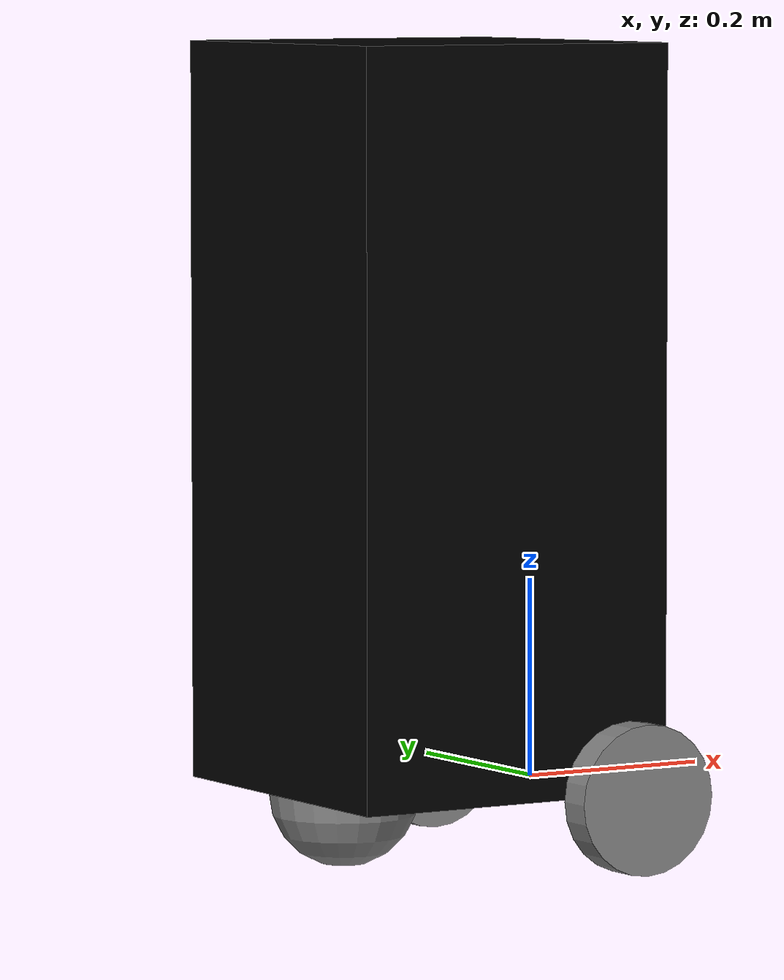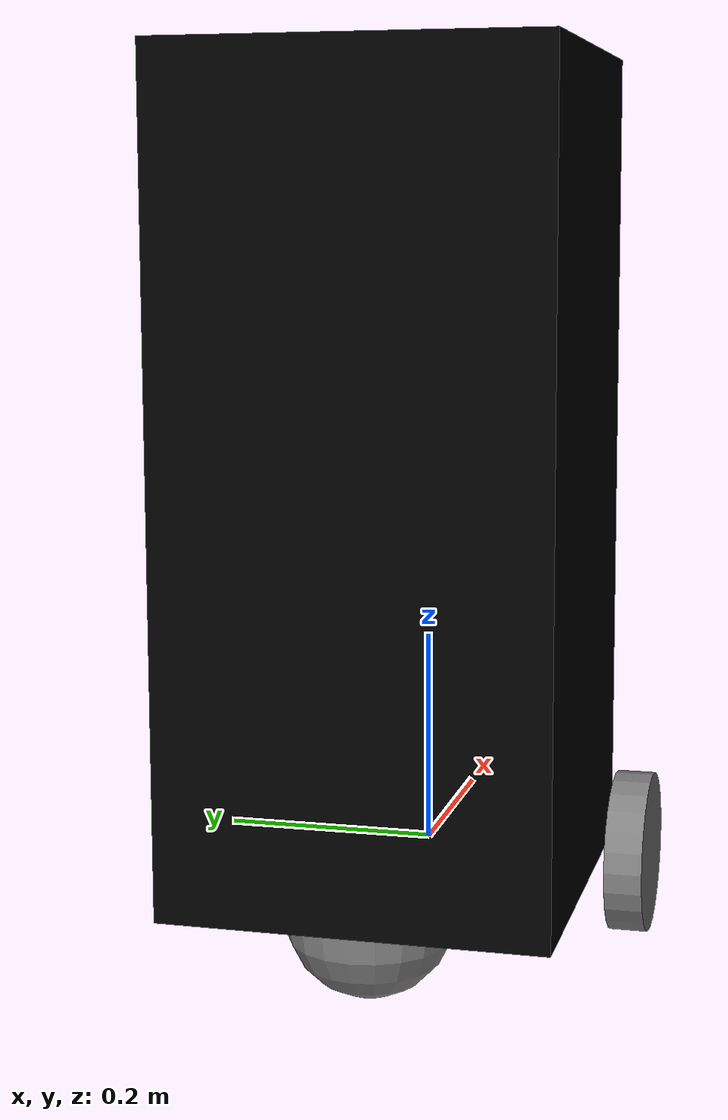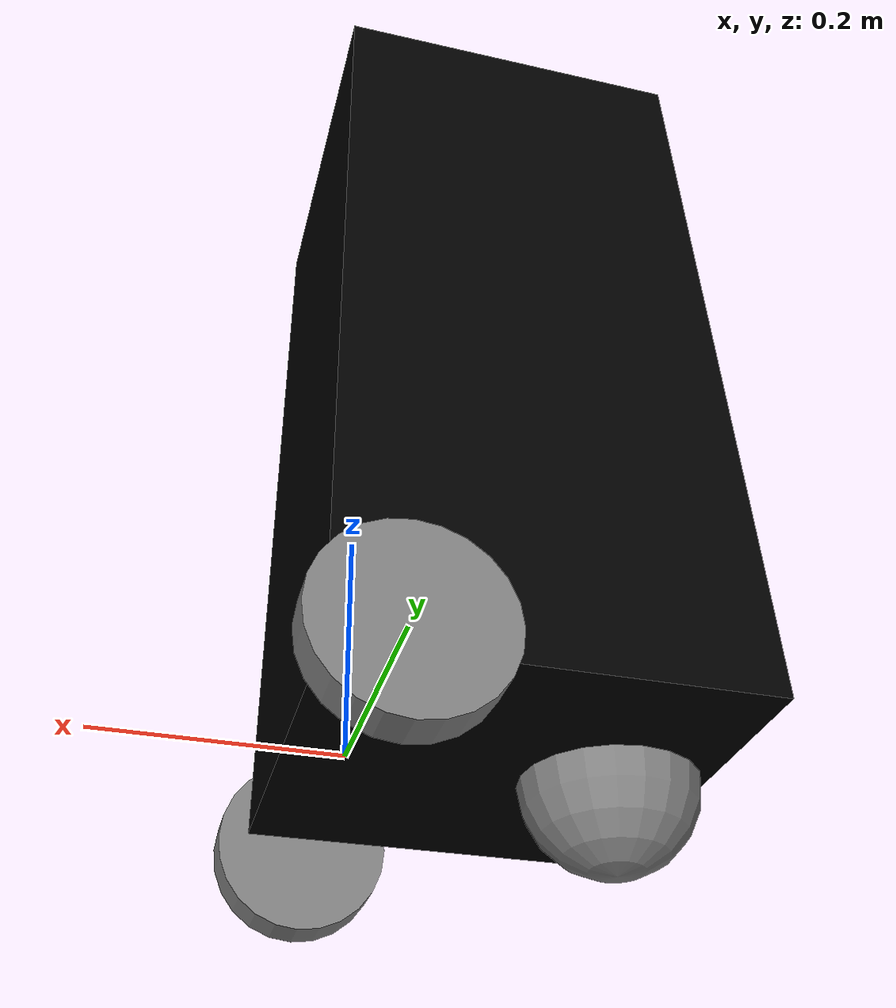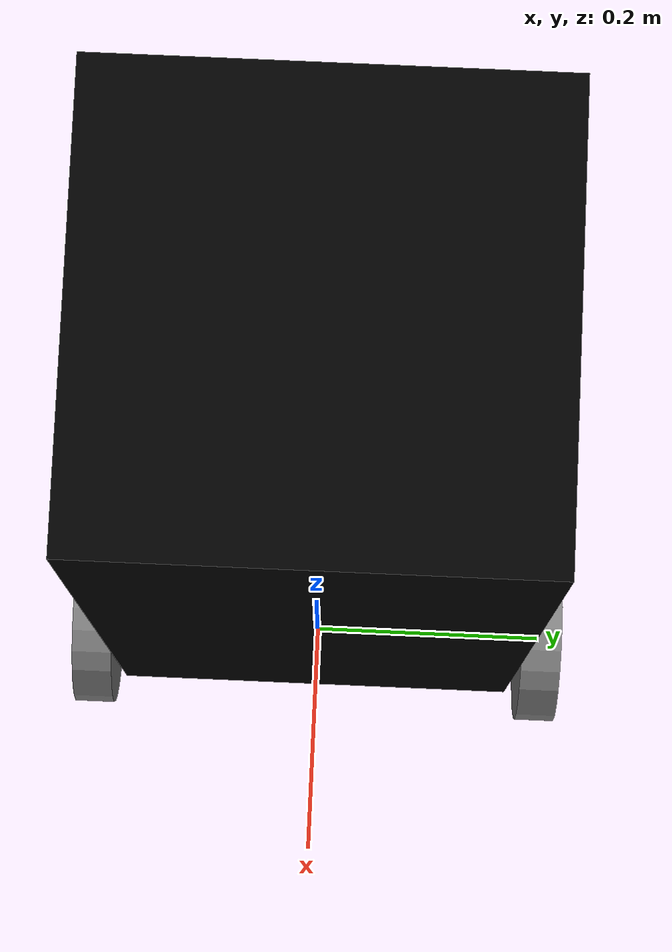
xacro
<?xml version="1.0"?>
<robot xmlns:xacro="http://www.ros.org/wiki/xacro">

    <xacro:include filename="inertial_macros.xacro"/>

    <material name="black">
        <color rgba = "0 0 0 1"/>
    </material>

    <material name="gray">
        <color rgba = "0.5 0.5 0.5 1"/>
    </material>

    <!-- BASE LINK -->

    <link name="base_link">

    </link>

    <!-- CHASSIS LINK -->

    <joint name="chassis_joint" type="fixed">
        <parent link="base_link" />
        <child link="chassis_link" />
        <origin xyz="-0.2935 0 0"/>
    </joint>

    <link name="chassis_link">
        <visual>
        <origin xyz="0.172 0 0.3705" />
            <geometry>
                <box size="0.344 0.344 0.741" />
            </geometry>
            <material name="black" />
        </visual>

        <collision>
        <origin xyz="0.172 0 0.3705" />
            <geometry>
                <box size="0.344 0.344 0.741" />
            </geometry>
        </collision>

        <xacro:inertial_box mass="24" x="0.344" y="0.344" z="0.300">
            <origin xyz="0.172 0 0.3705" rpy="0 0 0"/>
        </xacro:inertial_box>
    </link>

    <gazebo reference="chassis">
        <material> Gazebo/Black </material>
    </gazebo>

    <!-- LEFT WHEEL LINK -->

    <joint name="left_wheel_joint" type="continuous">
        <parent link="base_link" />
        <child link="left_wheel_link" />
        <origin xyz="0 0.2 0" rpy="-${pi/2} 0 0"/>
        <axis xyz="0 0 1"/>
    </joint>

    <link name="left_wheel_link">
        <visual>
            <geometry>
                <cylinder radius="0.075" length="0.035"/>
            </geometry>
            <material name="gray" />
        </visual>

        <collision>
            <geometry>
                <cylinder radius="0.075" length="0.035"/>
            </geometry>
        </collision>
        <xacro:inertial_cylinder mass="0.5" length="0.035" radius="0.075">
            <origin xyz="0 0 0" rpy="0 0 0"/>
        </xacro:inertial_cylinder>
    </link>

    <gazebo reference="left_wheel_link">
        <material> Gazebo/Gray</material>
    </gazebo>

    <!-- RIGHT WHEEL LINK -->

    <joint name="right_wheel_joint" type="continuous">
        <parent link="base_link" />
        <child link="right_wheel_link" />
        <origin xyz="0 -0.2 0" rpy="${pi/2} 0 0"/>
        <axis xyz="0 0 -1"/>
    </joint>

    <link name="right_wheel_link">
        <visual>
            <geometry>
                <cylinder radius="0.075" length="0.035"/>
            </geometry>
            <material name="gray" />
        </visual>

        <collision>
            <geometry>
                <cylinder radius="0.075" length="0.035"/>
            </geometry>
        </collision>

        <xacro:inertial_cylinder mass="0.5" length="0.035" radius="0.075">
            <origin xyz="0 0 0" rpy="0 0 0"/>
        </xacro:inertial_cylinder>
    </link>

    <gazebo reference="right_wheel_link">
        <material> Gazebo/Gray</material>
    </gazebo>

    <!-- CASTER WHEEL LINK -->

    <joint name="caster_wheel_joint" type="fixed">
        <parent link="chassis_link" />
        <child link="caster_wheel_link" />
        <origin xyz="0.075 0 0" />
    </joint>

    <link name="caster_wheel_link">
        <visual>
            <geometry>
                <sphere radius="0.075" />
            </geometry>
            <material name="gray" />
        </visual>

        <collision>
            <geometry>
                <sphere radius="0.075" />
            </geometry>
        </collision>

        <xacro:inertial_sphere mass="0.5" radius="0.075">
            <origin xyz="0 0 0" rpy="0 0 0"/>
        </xacro:inertial_sphere>
    </link>

    <gazebo reference="caster_wheel_link">
        <material> Gazebo/Gray</material>
        <mu1 value="0.0000001" />
        <mu2 value="0.0000001" />
    </gazebo>

</robot>
